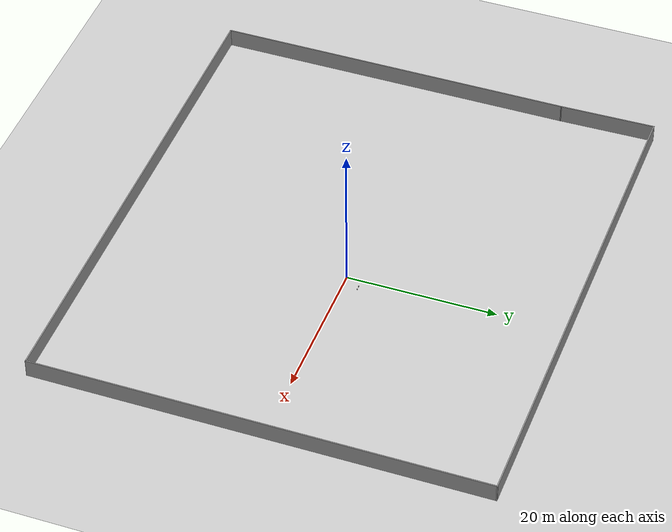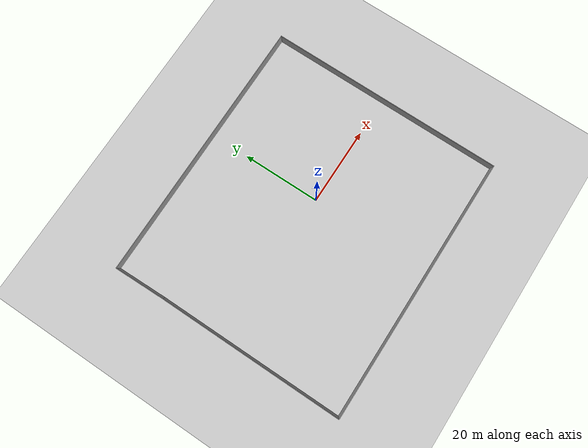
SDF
<sdf version="1.7">
 <world name="default">
  <light name="sun" type="directional">
   <pose>0 0 10 0 -0 0</pose>
   <diffuse>0.8 0.8 0.8 1</diffuse>
   <specular>0.2 0.2 0.2 1</specular>
   <attenuation>
    <range>1000</range>
    <constant>0.9</constant>
    <linear>0.01</linear>
    <quadratic>0.001</quadratic>
   </attenuation>
   <direction>-0.5 0.1 -0.9</direction>
   <spot><inner_angle>0</inner_angle><outer_angle>0</outer_angle><falloff>0</falloff></spot>
  </light>
  <model name="ground_plane">
   <static>1</static>
   <link name="link">
    <collision name="collision">
     <geometry><plane><normal>0 0 1</normal><size>100 100</size></plane></geometry>
     <surface><friction><ode><mu>100</mu><mu2>50</mu2></ode></friction></surface>
    </collision>
    <visual name="visual">
     <cast_shadows>0</cast_shadows>
     <geometry><plane><normal>0 0 1</normal><size>100 100</size></plane></geometry>
     <material>
      <script><uri>file://media/materials/scripts/gazebo.material</uri><name>Gazebo/Grey</name></script>
     </material>
    </visual>
   </link>
  </model>
  <gravity>0 0 -9.8</gravity>
  <magnetic_field>6e-06 2.3e-05 -4.2e-05</magnetic_field>
  <atmosphere type="adiabatic"/>
  <physics type="ode">
   <max_step_size>0.001</max_step_size>
   <real_time_factor>1</real_time_factor>
   <real_time_update_rate>1000</real_time_update_rate>
  </physics>
  <scene><ambient>0.4 0.4 0.4 1</ambient><background>0.7 0.7 0.7 1</background><shadows>1</shadows></scene>
  <audio><device>default</device></audio>
  <spherical_coordinates>
   <surface_model>EARTH_WGS84</surface_model>
   <latitude_deg>0</latitude_deg>
   <longitude_deg>0</longitude_deg>
   <elevation>0</elevation>
   <heading_deg>0</heading_deg>
  </spherical_coordinates>
  <model name="new_room">
   <pose>-4.5154 -0.74189 0 0 -0 0</pose>
   <link name="Wall_3">
    <collision name="Wall_3_Collision">
     <geometry><box><size>47.75 0.15 2.5</size></box></geometry>
     <pose>0 0 1.25 0 -0 0</pose>
    </collision>
    <visual name="Wall_3_Visual">
     <pose>0 0 1.25 0 -0 0</pose>
     <geometry><box><size>47.75 0.15 2.5</size></box></geometry>
     <material>
      <script><uri>file://media/materials/scripts/gazebo.material</uri><name>Gazebo/Grey</name></script>
      <ambient>1 1 1 1</ambient>
     </material>
     <meta><layer>0</layer></meta>
    </visual>
    <pose>-33.7993 -6.37573 0 0 -0 -1.5708</pose>
   </link>
   <link name="Wall_4">
    <collision name="Wall_4_Collision">
     <geometry><box><size>68 0.15 2.5</size></box></geometry>
     <pose>0 0 1.25 0 -0 0</pose>
    </collision>
    <visual name="Wall_4_Visual">
     <pose>0 0 1.25 0 -0 0</pose>
     <geometry><box><size>68 0.15 2.5</size></box></geometry>
     <material>
      <script><uri>file://media/materials/scripts/gazebo.material</uri><name>Gazebo/Grey</name></script>
      <ambient>1 1 1 1</ambient>
     </material>
     <meta><layer>0</layer></meta>
    </visual>
    <pose>0.125727 -30.1757 0 0 -0 0</pose>
   </link>
   <link name="Wall_5">
    <collision name="Wall_5_Collision">
     <geometry><box><size>60.5 0.15 2.5</size></box></geometry>
     <pose>0 0 1.25 0 -0 0</pose>
    </collision>
    <visual name="Wall_5_Visual">
     <pose>0 0 1.25 0 -0 0</pose>
     <geometry><box><size>60.5 0.15 2.5</size></box></geometry>
     <material>
      <script><uri>file://media/materials/scripts/gazebo.material</uri><name>Gazebo/Grey</name></script>
      <ambient>1 1 1 1</ambient>
     </material>
     <meta><layer>0</layer></meta>
    </visual>
    <pose>34.0507 -0.000725 0 0 -0 1.5708</pose>
   </link>
   <link name="Wall_6">
    <collision name="Wall_6_Collision">
     <geometry><box><size>68.25 0.15 2.5</size></box></geometry>
     <pose>0 0 1.25 0 -0 0</pose>
    </collision>
    <visual name="Wall_6_Visual">
     <pose>0 0 1.25 0 -0 0</pose>
     <geometry><box><size>68.25 0.15 2.5</size></box></geometry>
     <material>
      <script><uri>file://media/materials/scripts/gazebo.material</uri><name>Gazebo/Grey</name></script>
      <ambient>1 1 1 1</ambient>
     </material>
     <meta><layer>0</layer></meta>
    </visual>
    <pose>0.000727 30.1743 0 0 -0 3.14159</pose>
   </link>
   <link name="Wall_7">
    <collision name="Wall_7_Collision">
     <geometry><box><size>12.9025 0.15 2.5</size></box></geometry>
     <pose>0 0 1.25 0 -0 0</pose>
    </collision>
    <visual name="Wall_7_Visual">
     <pose>0 0 1.25 0 -0 0</pose>
     <geometry><box><size>12.9025 0.15 2.5</size></box></geometry>
     <material>
      <script><uri>file://media/materials/scripts/gazebo.material</uri><name>Gazebo/Grey</name></script>
      <ambient>1 1 1 1</ambient>
     </material>
     <meta><layer>0</layer></meta>
    </visual>
    <pose>-33.9243 23.7993 0 0 -0 -1.55119</pose>
   </link>
   <static>1</static>
  </model>
  <model name="beer">
   <link name="link">
    <pose>0 0 0.115 0 -0 0</pose>
    <inertial>
     <mass>0.39</mass>
     <inertia><ixx>0.00058</ixx><ixy>0</ixy><ixz>0</ixz><iyy>0.00058</iyy><iyz>0</iyz><izz>0.00019</izz></inertia>
    </inertial>
    <collision name="collision">
     <geometry><cylinder><radius>0.055</radius><length>0.23</length></cylinder></geometry>
    </collision>
    <visual name="visual">
     <geometry><cylinder><radius>0.055</radius><length>0.23</length></cylinder></geometry>
     <material>
      <script>
       <uri>model://beer/materials/scripts</uri>
       <uri>model://beer/materials/textures</uri>
       <name>Beer/Diffuse</name>
      </script>
     </material>
    </visual>
   </link>
   <pose>1.84192 2.25469 0.63242 5e-06 2.1e-05 0.000164</pose>
  </model>
  <model name="camera">
   <pose>2.2964 2.24005 0.682422 9e-06 -3.7e-05 1.62258</pose>
   <link name="link">
    <inertial>
     <mass>0.1</mass>
     <inertia>
      <ixx>0.000166667</ixx>
      <iyy>0.000166667</iyy>
      <izz>0.000166667</izz>
      <ixy>0</ixy>
      <ixz>0</ixz>
      <iyz>0</iyz>
     </inertia>
    </inertial>
    <collision name="collision"><geometry><box><size>0.1 0.1 0.1</size></box></geometry></collision>
    <visual name="visual"><geometry><box><size>0.1 0.1 0.1</size></box></geometry></visual>
    <sensor name="camera" type="camera">
     <camera>
      <horizontal_fov>1.047</horizontal_fov>
      <image><width>320</width><height>240</height></image>
      <clip><near>0.1</near><far>100</far></clip>
     </camera>
     <always_on>1</always_on>
     <update_rate>30</update_rate>
     <visualize>1</visualize>
    </sensor>
   </link>
  </model>
 </world>
</sdf>
